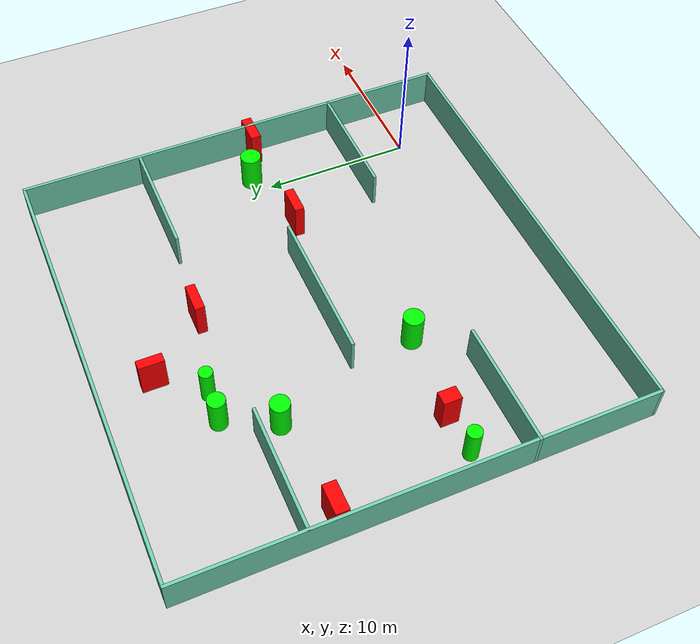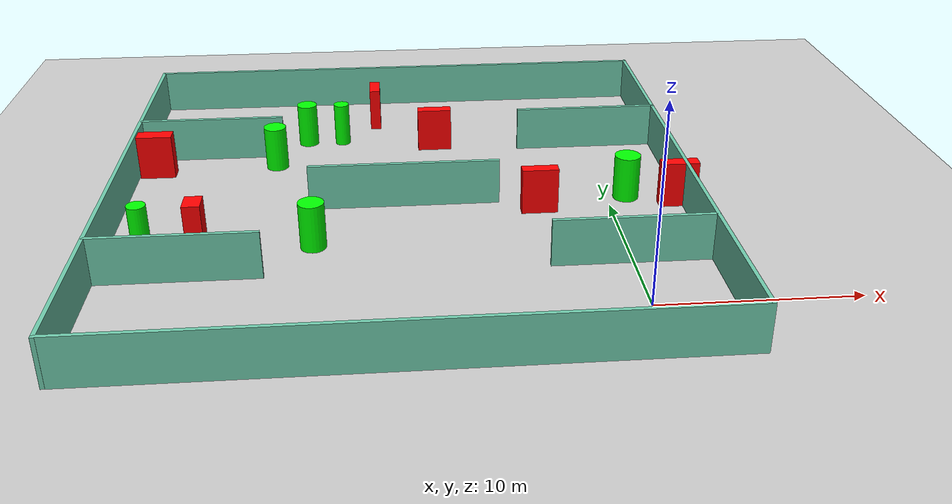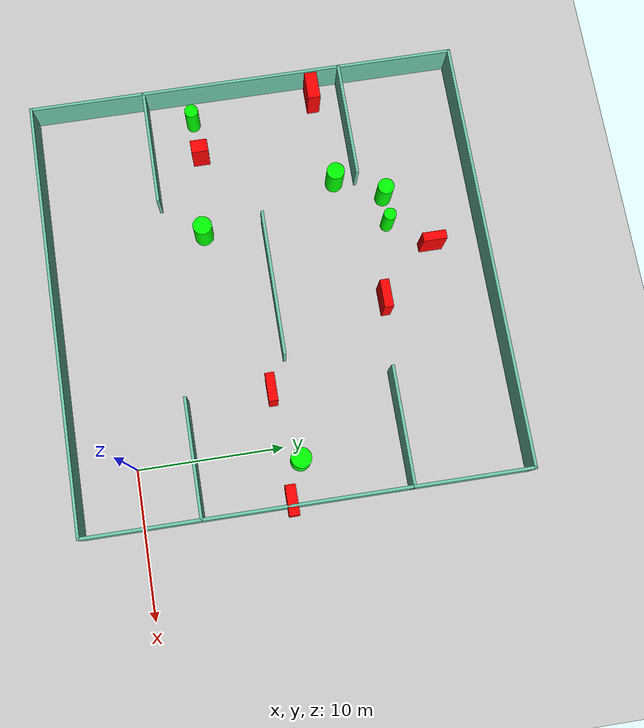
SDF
<sdf version="1.7">
 <world name="default">
  <light name="sun" type="directional">
   <pose>0 0 10 0 -0 0</pose>
   <diffuse>0.8 0.8 0.8 1</diffuse>
   <specular>0.2 0.2 0.2 1</specular>
   <attenuation>
    <range>1000</range>
    <constant>0.9</constant>
    <linear>0.01</linear>
    <quadratic>0.001</quadratic>
   </attenuation>
   <direction>-0.5 0.1 -0.9</direction>
   <spot><inner_angle>0</inner_angle><outer_angle>0</outer_angle><falloff>0</falloff></spot>
  </light>
  <model name="ground_plane">
   <static>1</static>
   <link name="link">
    <collision name="collision">
     <geometry><plane><normal>0 0 1</normal><size>100 100</size></plane></geometry>
     <surface>
      <contact><collide_bitmask>65535</collide_bitmask></contact>
      <friction><ode><mu>100</mu><mu2>50</mu2></ode></friction>
     </surface>
    </collision>
    <visual name="visual">
     <cast_shadows>0</cast_shadows>
     <geometry><plane><normal>0 0 1</normal><size>100 100</size></plane></geometry>
     <material>
      <script><uri>file://media/materials/scripts/gazebo.material</uri><name>Gazebo/Grey</name></script>
     </material>
    </visual>
   </link>
  </model>
  <gravity>0 0 -9.8</gravity>
  <magnetic_field>6e-06 2.3e-05 -4.2e-05</magnetic_field>
  <atmosphere type="adiabatic"/>
  <physics type="ode">
   <max_step_size>0.001</max_step_size>
   <real_time_factor>1</real_time_factor>
   <real_time_update_rate>1000</real_time_update_rate>
  </physics>
  <scene><ambient>0.4 0.4 0.4 1</ambient><background>0.7 0.7 0.7 1</background><shadows>1</shadows></scene>
  <spherical_coordinates>
   <surface_model>EARTH_WGS84</surface_model>
   <latitude_deg>0</latitude_deg>
   <longitude_deg>0</longitude_deg>
   <elevation>0</elevation>
   <heading_deg>0</heading_deg>
  </spherical_coordinates>
  <model name="my_base_walls">
   <link name="Wall_10">
    <collision name="Wall_10_Collision">
     <geometry><box><size>8.2 0.2 2.5</size></box></geometry>
     <pose>0 0 1.25 0 -0 0</pose>
    </collision>
    <visual name="Wall_10_Visual">
     <pose>0 0 1.25 0 -0 0</pose>
     <geometry><box><size>8.2 0.2 2.5</size></box></geometry>
     <material>
      <script><uri>file://media/materials/scripts/gazebo.material</uri><name>Gazebo/Grey</name></script>
      <ambient>0.435294 0.796078 0.67451 1</ambient>
     </material>
     <meta><layer>0</layer></meta>
    </visual>
    <pose>-11 -7 0 0 -0 0</pose>
   </link>
   <link name="Wall_12">
    <collision name="Wall_12_Collision">
     <geometry><box><size>8.2 0.2 2.5</size></box></geometry>
     <pose>0 0 1.25 0 -0 0</pose>
    </collision>
    <visual name="Wall_12_Visual">
     <pose>0 0 1.25 0 -0 0</pose>
     <geometry><box><size>8.2 0.2 2.5</size></box></geometry>
     <material>
      <script><uri>file://media/materials/scripts/gazebo.material</uri><name>Gazebo/Grey</name></script>
      <ambient>0.435294 0.796078 0.67451 1</ambient>
     </material>
     <meta><layer>0</layer></meta>
    </visual>
    <pose>-11 7 0 0 -0 0</pose>
   </link>
   <link name="Wall_14">
    <collision name="Wall_14_Collision">
     <geometry><box><size>8.2 0.2 2.5</size></box></geometry>
     <pose>0 0 1.25 0 -0 0</pose>
    </collision>
    <visual name="Wall_14_Visual">
     <pose>0 0 1.25 0 -0 0</pose>
     <geometry><box><size>8.2 0.2 2.5</size></box></geometry>
     <material>
      <script><uri>file://media/materials/scripts/gazebo.material</uri><name>Gazebo/Grey</name></script>
      <ambient>0.435294 0.796078 0.67451 1</ambient>
     </material>
     <meta><layer>0</layer></meta>
    </visual>
    <pose>11 7 0 0 -0 3.14159</pose>
   </link>
   <link name="Wall_16">
    <collision name="Wall_16_Collision">
     <geometry><box><size>10.2 0.2 2.5</size></box></geometry>
     <pose>0 0 1.25 0 -0 0</pose>
    </collision>
    <visual name="Wall_16_Visual">
     <pose>0 0 1.25 0 -0 0</pose>
     <geometry><box><size>10.2 0.2 2.5</size></box></geometry>
     <material>
      <script><uri>file://media/materials/scripts/gazebo.material</uri><name>Gazebo/Grey</name></script>
      <ambient>0.435294 0.796078 0.67451 1</ambient>
     </material>
     <meta><layer>0</layer></meta>
    </visual>
    <pose>0 0 0 0 -0 3.14159</pose>
   </link>
   <link name="Wall_2">
    <collision name="Wall_2_Collision">
     <geometry><box><size>30.2 0.2 2.5</size></box></geometry>
     <pose>0 0 1.25 0 -0 0</pose>
    </collision>
    <visual name="Wall_2_Visual">
     <pose>0 0 1.25 0 -0 0</pose>
     <geometry><box><size>30.2 0.2 2.5</size></box></geometry>
     <material>
      <script><uri>file://media/materials/scripts/gazebo.material</uri><name>Gazebo/Grey</name></script>
      <ambient>0.435294 0.796078 0.67451 1</ambient>
     </material>
     <meta><layer>0</layer></meta>
    </visual>
    <pose>0 -15 0 0 -0 3.14159</pose>
   </link>
   <link name="Wall_3">
    <collision name="Wall_3_Collision">
     <geometry><box><size>30.2 0.2 2.5</size></box></geometry>
     <pose>0 0 1.25 0 -0 0</pose>
    </collision>
    <visual name="Wall_3_Visual">
     <pose>0 0 1.25 0 -0 0</pose>
     <geometry><box><size>30.2 0.2 2.5</size></box></geometry>
     <material>
      <script><uri>file://media/materials/scripts/gazebo.material</uri><name>Gazebo/Grey</name></script>
      <ambient>0.435294 0.796078 0.67451 1</ambient>
     </material>
     <meta><layer>0</layer></meta>
    </visual>
    <pose>-15 0 0 0 -0 1.5708</pose>
   </link>
   <link name="Wall_4">
    <collision name="Wall_4_Collision">
     <geometry><box><size>30.2 0.2 2.5</size></box></geometry>
     <pose>0 0 1.25 0 -0 0</pose>
    </collision>
    <visual name="Wall_4_Visual">
     <pose>0 0 1.25 0 -0 0</pose>
     <geometry><box><size>30.2 0.2 2.5</size></box></geometry>
     <material>
      <script><uri>file://media/materials/scripts/gazebo.material</uri><name>Gazebo/Grey</name></script>
      <ambient>0.435294 0.796078 0.67451 1</ambient>
     </material>
     <meta><layer>0</layer></meta>
    </visual>
    <pose>0 15 0 0 -0 0</pose>
   </link>
   <link name="Wall_6">
    <collision name="Wall_6_Collision">
     <geometry><box><size>30.2 0.2 2.5</size></box></geometry>
     <pose>0 0 1.25 0 -0 0</pose>
    </collision>
    <visual name="Wall_6_Visual">
     <pose>0 0 1.25 0 -0 0</pose>
     <geometry><box><size>30.2 0.2 2.5</size></box></geometry>
     <material>
      <script><uri>file://media/materials/scripts/gazebo.material</uri><name>Gazebo/Grey</name></script>
      <ambient>0.435294 0.796078 0.67451 1</ambient>
     </material>
     <meta><layer>0</layer></meta>
    </visual>
    <pose>15 0 0 0 -0 1.5708</pose>
   </link>
   <link name="Wall_8">
    <collision name="Wall_8_Collision">
     <geometry><box><size>8.2 0.2 2.5</size></box></geometry>
     <pose>0 0 1.25 0 -0 0</pose>
    </collision>
    <visual name="Wall_8_Visual">
     <pose>0 0 1.25 0 -0 0</pose>
     <geometry><box><size>8.2 0.2 2.5</size></box></geometry>
     <material>
      <script><uri>file://media/materials/scripts/gazebo.material</uri><name>Gazebo/Grey</name></script>
      <ambient>0.435294 0.796078 0.67451 1</ambient>
     </material>
     <meta><layer>0</layer></meta>
    </visual>
    <pose>11 -7 0 0 -0 3.14159</pose>
   </link>
   <static>1</static>
   <pose>-11 11 0 0 -0 0</pose>
  </model>
  <model name="cylinder1">
   <static>1</static>
   <link name="link">
    <inertial>
     <mass>1</mass>
     <inertia><ixx>0.5</ixx><ixy>0</ixy><ixz>0</ixz><iyy>0.5</iyy><iyz>0</iyz><izz>1</izz></inertia>
    </inertial>
    <collision name="collision">
     <geometry><cylinder><radius>0.47928667537567027</radius><length>2.5</length></cylinder></geometry>
    </collision>
    <visual name="visual">
     <geometry><cylinder><radius>0.47928667537567027</radius><length>2.5</length></cylinder></geometry>
     <material>
      <ambient>0 1 0 1</ambient>
      <diffuse>0 1 0 1</diffuse>
      <specular>0.1 0.1 0.1 1</specular>
      <emissive>0 0 0 0</emissive>
     </material>
    </visual>
   </link>
   <pose>-24.18973756411524 7.178650896425104 1.25 0 0 0</pose>
  </model>
  <model name="cylinder2">
   <static>1</static>
   <link name="link">
    <inertial>
     <mass>1</mass>
     <inertia><ixx>0.5</ixx><ixy>0</ixy><ixz>0</ixz><iyy>0.5</iyy><iyz>0</iyz><izz>1</izz></inertia>
    </inertial>
    <collision name="collision">
     <geometry><cylinder><radius>0.6245848854217859</radius><length>2.5</length></cylinder></geometry>
    </collision>
    <visual name="visual">
     <geometry><cylinder><radius>0.6245848854217859</radius><length>2.5</length></cylinder></geometry>
     <material>
      <ambient>0 1 0 1</ambient>
      <diffuse>0 1 0 1</diffuse>
      <specular>0.1 0.1 0.1 1</specular>
      <emissive>0 0 0 0</emissive>
     </material>
    </visual>
   </link>
   <pose>-18.211953407953295 16.516824321394846 1.25 0 0 0</pose>
  </model>
  <model name="cylinder3">
   <static>1</static>
   <link name="link">
    <inertial>
     <mass>1</mass>
     <inertia><ixx>0.5</ixx><ixy>0</ixy><ixz>0</ixz><iyy>0.5</iyy><iyz>0</iyz><izz>1</izz></inertia>
    </inertial>
    <collision name="collision">
     <geometry><cylinder><radius>0.6974455436365137</radius><length>2.5</length></cylinder></geometry>
    </collision>
    <visual name="visual">
     <geometry><cylinder><radius>0.6974455436365137</radius><length>2.5</length></cylinder></geometry>
     <material>
      <ambient>0 1 0 1</ambient>
      <diffuse>0 1 0 1</diffuse>
      <specular>0.1 0.1 0.1 1</specular>
      <emissive>0 0 0 0</emissive>
     </material>
    </visual>
   </link>
   <pose>1.0568016194819698 11.002956703414792 1.25 0 0 0</pose>
  </model>
  <model name="cylinder4">
   <static>1</static>
   <link name="link">
    <inertial>
     <mass>1</mass>
     <inertia><ixx>0.5</ixx><ixy>0</ixy><ixz>0</ixz><iyy>0.5</iyy><iyz>0</iyz><izz>1</izz></inertia>
    </inertial>
    <collision name="collision">
     <geometry><cylinder><radius>0.6621889629381955</radius><length>2.5</length></cylinder></geometry>
    </collision>
    <visual name="visual">
     <geometry><cylinder><radius>0.6621889629381955</radius><length>2.5</length></cylinder></geometry>
     <material>
      <ambient>0 1 0 1</ambient>
      <diffuse>0 1 0 1</diffuse>
      <specular>0.1 0.1 0.1 1</specular>
      <emissive>0 0 0 0</emissive>
     </material>
    </visual>
   </link>
   <pose>-15.677185968484476 6.784228341759057 1.25 0 0 0</pose>
  </model>
  <model name="cylinder5">
   <static>1</static>
   <link name="link">
    <inertial>
     <mass>1</mass>
     <inertia><ixx>0.5</ixx><ixy>0</ixy><ixz>0</ixz><iyy>0.5</iyy><iyz>0</iyz><izz>1</izz></inertia>
    </inertial>
    <collision name="collision">
     <geometry><cylinder><radius>0.5710642983093223</radius><length>2.5</length></cylinder></geometry>
    </collision>
    <visual name="visual">
     <geometry><cylinder><radius>0.5710642983093223</radius><length>2.5</length></cylinder></geometry>
     <material>
      <ambient>0 1 0 1</ambient>
      <diffuse>0 1 0 1</diffuse>
      <specular>0.1 0.1 0.1 1</specular>
      <emissive>0 0 0 0</emissive>
     </material>
    </visual>
   </link>
   <pose>-16.574519001848813 19.787692278508207 1.25 0 0 0</pose>
  </model>
  <model name="cylinder6">
   <static>1</static>
   <link name="link">
    <inertial>
     <mass>1</mass>
     <inertia><ixx>0.5</ixx><ixy>0</ixy><ixz>0</ixz><iyy>0.5</iyy><iyz>0</iyz><izz>1</izz></inertia>
    </inertial>
    <collision name="collision">
     <geometry><cylinder><radius>0.4406308841136028</radius><length>2.5</length></cylinder></geometry>
    </collision>
    <visual name="visual">
     <geometry><cylinder><radius>0.4406308841136028</radius><length>2.5</length></cylinder></geometry>
     <material>
      <ambient>0 1 0 1</ambient>
      <diffuse>0 1 0 1</diffuse>
      <specular>0.1 0.1 0.1 1</specular>
      <emissive>0 0 0 0</emissive>
     </material>
    </visual>
   </link>
   <pose>-14.532298471911432 19.703273295718663 1.25 0 0 0</pose>
  </model>
  <model name="box1">
   <static>1</static>
   <link name="link">
    <inertial>
     <mass>1</mass>
     <inertia><ixx>0.083</ixx><ixy>0</ixy><ixz>0</ixz><iyy>0.083</iyy><iyz>0</iyz><izz>0.083</izz></inertia>
    </inertial>
    <collision name="collision">
     <geometry><box><size>2.0223417644519746 0.7028469674916944 2.5</size></box></geometry>
    </collision>
    <visual name="visual">
     <geometry><box><size>2.0223417644519746 0.7028469674916944 2.5</size></box></geometry>
     <material>
      <ambient>1 0 0 1</ambient>
      <diffuse>1 0 0 1</diffuse>
      <specular>0.1 0.1 0.1 1</specular>
      <emissive>0 0 0 0</emissive>
     </material>
    </visual>
    <sensor name="my_contact" type="contact">
     <contact><collision>box_collision</collision><topic>__default_topic__</topic></contact>
    </sensor>
   </link>
   <pose>3.6524955620734723 9.993687458948 1.25 0 0 0</pose>
  </model>
  <model name="box2">
   <static>1</static>
   <link name="link">
    <inertial>
     <mass>1</mass>
     <inertia><ixx>0.083</ixx><ixy>0</ixy><ixz>0</ixz><iyy>0.083</iyy><iyz>0</iyz><izz>0.083</izz></inertia>
    </inertial>
    <collision name="collision">
     <geometry><box><size>0.61543692508601 1.638241645098907 2.5</size></box></geometry>
    </collision>
    <visual name="visual">
     <geometry><box><size>0.61543692508601 1.638241645098907 2.5</size></box></geometry>
     <material>
      <ambient>1 0 0 1</ambient>
      <diffuse>1 0 0 1</diffuse>
      <specular>0.1 0.1 0.1 1</specular>
      <emissive>0 0 0 0</emissive>
     </material>
    </visual>
    <sensor name="my_contact" type="contact">
     <contact><collision>box_collision</collision><topic>__default_topic__</topic></contact>
    </sensor>
   </link>
   <pose>-12.530858954074318 22.44993322645361 1.25 0 0 0</pose>
  </model>
  <model name="box3">
   <static>1</static>
   <link name="link">
    <inertial>
     <mass>1</mass>
     <inertia><ixx>0.083</ixx><ixy>0</ixy><ixz>0</ixz><iyy>0.083</iyy><iyz>0</iyz><izz>0.083</izz></inertia>
    </inertial>
    <collision name="collision">
     <geometry><box><size>0.9006574201816907 1.1802776679675562 2.5</size></box></geometry>
    </collision>
    <visual name="visual">
     <geometry><box><size>0.9006574201816907 1.1802776679675562 2.5</size></box></geometry>
     <material>
      <ambient>1 0 0 1</ambient>
      <diffuse>1 0 0 1</diffuse>
      <specular>0.1 0.1 0.1 1</specular>
      <emissive>0 0 0 0</emissive>
     </material>
    </visual>
    <sensor name="my_contact" type="contact">
     <contact><collision>box_collision</collision><topic>__default_topic__</topic></contact>
    </sensor>
   </link>
   <pose>-21.510282763429906 7.362900647266011 1.25 0 0 0</pose>
  </model>
  <model name="box4">
   <static>1</static>
   <link name="link">
    <inertial>
     <mass>1</mass>
     <inertia><ixx>0.083</ixx><ixy>0</ixy><ixz>0</ixz><iyy>0.083</iyy><iyz>0</iyz><izz>0.083</izz></inertia>
    </inertial>
    <collision name="collision">
     <geometry><box><size>1.9324890039762956 0.6335638012805126 2.5</size></box></geometry>
    </collision>
    <visual name="visual">
     <geometry><box><size>1.9324890039762956 0.6335638012805126 2.5</size></box></geometry>
     <material>
      <ambient>1 0 0 1</ambient>
      <diffuse>1 0 0 1</diffuse>
      <specular>0.1 0.1 0.1 1</specular>
      <emissive>0 0 0 0</emissive>
     </material>
    </visual>
    <sensor name="my_contact" type="contact">
     <contact><collision>box_collision</collision><topic>__default_topic__</topic></contact>
    </sensor>
   </link>
   <pose>-3.874739275975731 9.785300377941304 1.25 0 0 0</pose>
  </model>
  <model name="box5">
   <static>1</static>
   <link name="link">
    <inertial>
     <mass>1</mass>
     <inertia><ixx>0.083</ixx><ixy>0</ixy><ixz>0</ixz><iyy>0.083</iyy><iyz>0</iyz><izz>0.083</izz></inertia>
    </inertial>
    <collision name="collision">
     <geometry><box><size>1.95115981666797 0.6274040612933567 2.5</size></box></geometry>
    </collision>
    <visual name="visual">
     <geometry><box><size>1.95115981666797 0.6274040612933567 2.5</size></box></geometry>
     <material>
      <ambient>1 0 0 1</ambient>
      <diffuse>1 0 0 1</diffuse>
      <specular>0.1 0.1 0.1 1</specular>
      <emissive>0 0 0 0</emissive>
     </material>
    </visual>
    <sensor name="my_contact" type="contact">
     <contact><collision>box_collision</collision><topic>__default_topic__</topic></contact>
    </sensor>
   </link>
   <pose>-9.02430358054455 18.478756100042844 1.25 0 0 0</pose>
  </model>
  <model name="box6">
   <static>1</static>
   <link name="link">
    <inertial>
     <mass>1</mass>
     <inertia><ixx>0.083</ixx><ixy>0</ixy><ixz>0</ixz><iyy>0.083</iyy><iyz>0</iyz><izz>0.083</izz></inertia>
    </inertial>
    <collision name="collision">
     <geometry><box><size>1.936360325946539 0.8696773410300953 2.5</size></box></geometry>
    </collision>
    <visual name="visual">
     <geometry><box><size>1.936360325946539 0.8696773410300953 2.5</size></box></geometry>
     <material>
      <ambient>1 0 0 1</ambient>
      <diffuse>1 0 0 1</diffuse>
      <specular>0.1 0.1 0.1 1</specular>
      <emissive>0 0 0 0</emissive>
     </material>
    </visual>
    <sensor name="my_contact" type="contact">
     <contact><collision>box_collision</collision><topic>__default_topic__</topic></contact>
    </sensor>
   </link>
   <pose>-24.853195152738287 15.942612486121774 1.25 0 0 0</pose>
  </model>
 </world>
</sdf>
